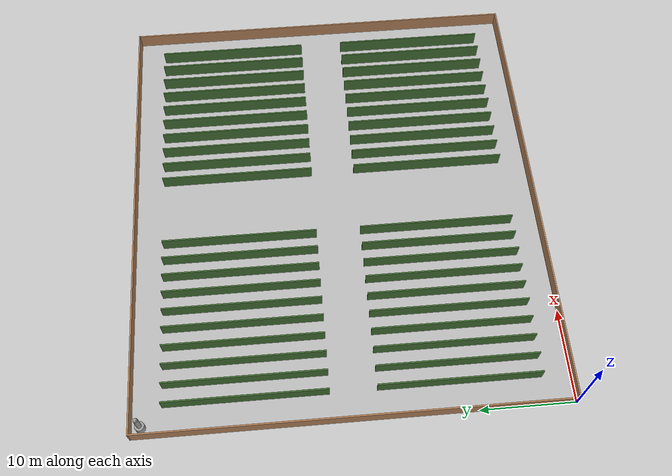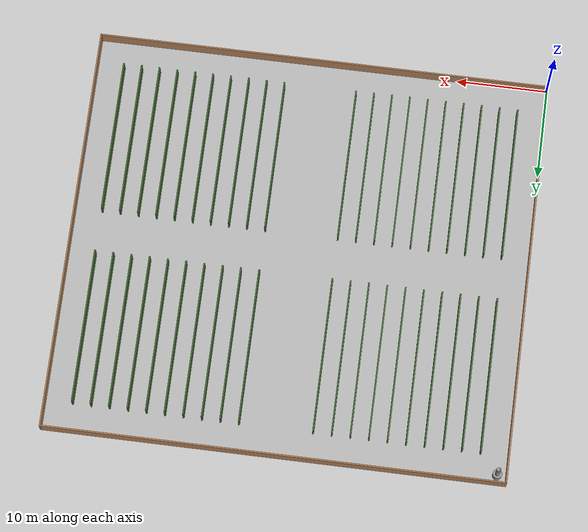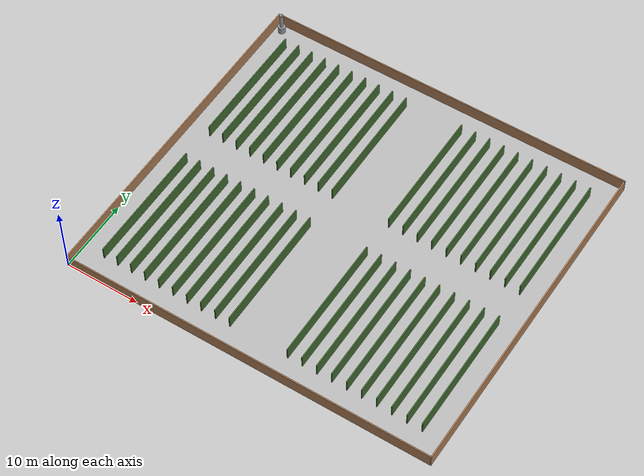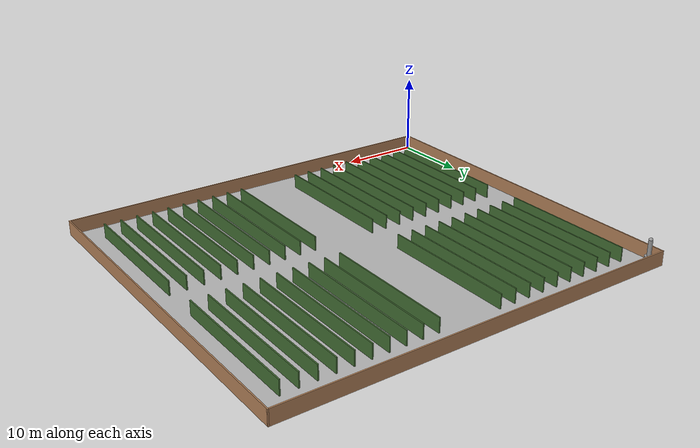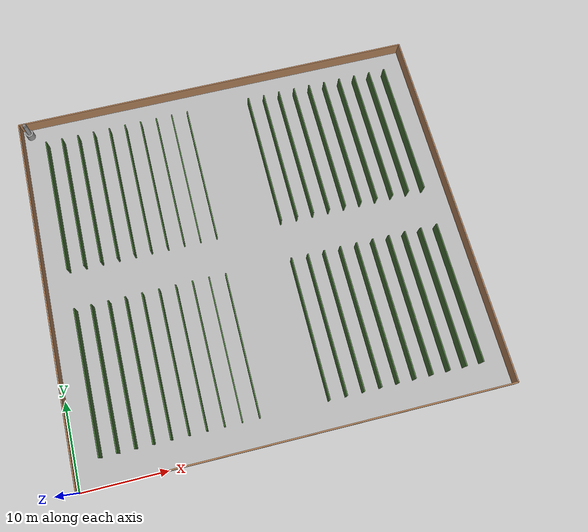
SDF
<sdf version="1.4">
 <world name="default">
  <light name="sun" type="directional">
   <pose>0 0 10 0 -0 0</pose>
   <diffuse>0.8 0.8 0.8 1</diffuse>
   <specular>0.2 0.2 0.2 1</specular>
   <attenuation>
    <range>1000</range>
    <constant>0.9</constant>
    <linear>0.01</linear>
    <quadratic>0.001</quadratic>
   </attenuation>
   <direction>0.5 0.1 -0.9</direction>
  </light>
  <scene><ambient>0.4 0.4 0.4 1</ambient><background>0.7 0.7 0.7 1</background><shadows>0</shadows></scene>
  <include>
   <uri>model://Workspaces/rasoc2_ws/src/rasoc_pkg/models/finca_nueva</uri>
   <pose>25 22.5 0 0 0 0</pose>
  </include>
  <include>
   <uri>model://Workspaces/rasoc2_ws/src/rasoc_pkg/models/gps_base</uri>
   <pose>1 44 1 0 0 0</pose>
  </include>
 </world>
</sdf>

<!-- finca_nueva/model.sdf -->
<sdf version='1.7'>
  <model name='finca_nueva'>
    <pose>0 0 0 0 0 0</pose>

  <!-- Piso -->
    <link name='Floor_0'>
      <collision name='Floor_0_Collision'>
        <geometry>
          <box>
            <size>50 45 0.1</size>
          </box>
        </geometry>
        <pose>0 0 0 0 0 0</pose>
      </collision>
      <visual name='Floor_0_Visual'>
        <pose>0 0 0 0 0 0</pose>
        <geometry>
          <box>
            <size>50 45 0.1</size>
          </box>
        </geometry>
        <material>
           <script>
            <uri>materials/scripts</uri>
            <uri>materials/textures</uri>
            <name>sandAlbedo/Diffuse</name>
          </script>
        </material>
        <meta>
          <layer>0</layer>
        </meta>
      </visual>
      <pose>0 0 0 0 0 0</pose>
    </link>

  <!-- Paredes -->
    <link name='Wall_1'>
      <collision name='Wall_1_Collision'>
        <geometry>
          <box>
            <size>50.15 0.15 1.8</size>
          </box>
        </geometry>
        <pose>0 0 0.9 0 0 0</pose>
      </collision>
      <visual name='Wall_1_Visual'>
        <pose>0 0 0.9 0 -0 0</pose>
        <geometry>
          <box>
            <size>50.15 0.15 1.8</size>
          </box>
        </geometry>
        <material>
           <script>
            <uri>file://media/materials/scripts/gazebo.material</uri>
            <name>Gazebo/Grey</name>
          </script>
          <ambient>0.709804 0.513726 0.352941 1</ambient>
          <diffuse>0.7 0.7 0.7 1</diffuse>
          <specular>0.01 0.01 0.01 1</specular>
          <emissive>0 0 0 1</emissive>
        </material>
        <meta>
          <layer>0</layer>
        </meta>
      </visual>
      <pose>0 -22.5 0 0 0 0</pose>
    </link>

    <link name='Wall_3'>
      <collision name='Wall_3_Collision'>
        <geometry>
          <box>
            <size>45.15 0.15 1.8</size>
          </box>
        </geometry>
        <pose>0 0 0.9 0 -0 0</pose>
      </collision>
      <visual name='Wall_3_Visual'>
        <pose>0 0 0.9 0 -0 0</pose>
        <geometry>
          <box>
            <size>45.15 0.15 1.8</size>
          </box>
        </geometry>
        <material>
          <script>
            <uri>file://media/materials/scripts/gazebo.material</uri>
            <name>Gazebo/Grey</name>
          </script>
          <ambient>0.709804 0.513726 0.352941 1</ambient>
          <diffuse>0.7 0.7 0.7 1</diffuse>
          <specular>0.01 0.01 0.01 1</specular>
          <emissive>0 0 0 1</emissive>
        </material>
        <meta>
          <layer>0</layer>
        </meta>
      </visual>
      <pose>25 0 0 0 -0 1.5708</pose>
    </link>

    <link name='Wall_4'>
      <collision name='Wall_4_Collision'>
        <geometry>
          <box>
            <size>50.15 0.15 1.8</size>
          </box>
        </geometry>
        <pose>0 0 0.9 0 -0 0</pose>
      </collision>
      <visual name='Wall_4_Visual'>
        <pose>0 0 0.9 0 -0 0</pose>
        <geometry>
          <box>
            <size>50.15 0.15 1.8</size>
          </box>
        </geometry>
        <material>
          <script>
            <uri>file://media/materials/scripts/gazebo.material</uri>
            <name>Gazebo/Grey</name>
          </script>
          <ambient>0.709804 0.513726 0.352941 1</ambient>
          <diffuse>0.7 0.7 0.7 1</diffuse>
          <specular>0.01 0.01 0.01 1</specular>
          <emissive>0 0 0 1</emissive>
        </material>
        <meta>
          <layer>0</layer>
        </meta>
      </visual>
      <pose>0 22.5 0 0 -0 3.14159</pose>
    </link>

    <link name='Wall_5'>
      <collision name='Wall_5_Collision'>
        <geometry>
          <box>
            <size>45.15 0.15 1.8</size>
          </box>
        </geometry>
        <pose>0 0 0.9 0 -0 0</pose>
      </collision>
      <visual name='Wall_5_Visual'>
        <pose>0 0 0.9 0 -0 0</pose>
        <geometry>
          <box>
            <size>45.15 0.15 1.8</size>
          </box>
        </geometry>
        <material>
          <script>
            <uri>file://media/materials/scripts/gazebo.material</uri>
            <name>Gazebo/Grey</name>
          </script>
          <ambient>0.709804 0.513726 0.352941 1</ambient>
          <diffuse>0.7 0.7 0.7 1</diffuse>
          <specular>0.01 0.01 0.01 1</specular>
          <emissive>0 0 0 1</emissive>
        </material>
        <meta>
          <layer>0</layer>
        </meta>
      </visual>
      <pose>-25 0 0 0 -0 -1.5708</pose>
    </link>

  <!-- Arriba Izquierda -->
    <link name='Wall_11'>
      <collision name='Wall_11_Collision'>
        <geometry>
          <box>
            <size>17 0.15 1.8</size>
          </box>
        </geometry>
        <pose>0 0 0.9 0 -0 0</pose>
      </collision>
      <visual name='Wall_11_Visual'>
        <pose>0 0 0.9 0 -0 0</pose>
        <geometry>
          <box>
            <size>17 0.15 1.8</size>
          </box>
        </geometry>
        <material>
          <script>
            <uri>file://media/materials/scripts/gazebo.material</uri>
            <name>Gazebo/Grey</name>
          </script>
          <ambient>0.266667 0.435294 0.203922 1</ambient>
        </material>
        <meta>
          <layer>0</layer>
        </meta>
      </visual>
      <pose>-22 10.925 0 0 -0 -1.5708</pose>
    </link>

    <link name='Wall_12'>
      <collision name='Wall_12_Collision'>
        <geometry>
          <box>
            <size>17 0.15 1.8</size>
          </box>
        </geometry>
        <pose>0 0 0.9 0 -0 0</pose>
      </collision>
      <visual name='Wall_12_Visual'>
        <pose>0 0 0.9 0 -0 0</pose>
        <geometry>
          <box>
            <size>17 0.15 1.8</size>
          </box>
        </geometry>
        <material>
          <script>
            <uri>file://media/materials/scripts/gazebo.material</uri>
            <name>Gazebo/Grey</name>
          </script>
          <ambient>0.266667 0.435294 0.203922 1</ambient>
        </material>
        <meta>
          <layer>0</layer>
        </meta>
      </visual>
      <pose>-20 10.925 0 0 -0 -1.5708</pose>
    </link>

    <link name='Wall_13'>
      <collision name='Wall_13_Collision'>
        <geometry>
          <box>
            <size>17 0.15 1.8</size>
          </box>
        </geometry>
        <pose>0 0 0.9 0 0 0</pose>
      </collision>
      <visual name='Wall_13_Visual'>
        <pose>0 0 0.9 0 0 0</pose>
        <geometry>
          <box>
            <size>17 0.15 1.8</size>
          </box>
        </geometry>
        <material>
          <script>
            <uri>file://media/materials/scripts/gazebo.material</uri>
            <name>Gazebo/Grey</name>
          </script>
          <ambient>0.266667 0.435294 0.203922 1</ambient>
        </material>
        <meta>
          <layer>0</layer>
        </meta>
      </visual>
      <pose>-18 10.925 0 0 0 1.5708</pose>
    </link>

    <link name='Wall_14'>
      <collision name='Wall_14_Collision'>
        <geometry>
          <box>
            <size>17 0.15 1.8</size>
          </box>
        </geometry>
        <pose>0 0 0.9 0 0 0</pose>
      </collision>
      <visual name='Wall_14_Visual'>
        <pose>0 0 0.9 0 0 0</pose>
        <geometry>
          <box>
            <size>17 0.15 1.8</size>
          </box>
        </geometry>
        <material>
          <script>
            <uri>file://media/materials/scripts/gazebo.material</uri>
            <name>Gazebo/Grey</name>
          </script>
          <ambient>0.266667 0.435294 0.203922 1</ambient>
        </material>
        <meta>
          <layer>0</layer>
        </meta>
      </visual>
      <pose>-16 10.925 0 0 0 1.5708</pose>
    </link>

    <link name='Wall_15'>
      <collision name='Wall_15_Collision'>
        <geometry>
          <box>
            <size>17 0.15 1.8</size>
          </box>
        </geometry>
        <pose>0 0 0.9 0 0 0</pose>
      </collision>
      <visual name='Wall_15_Visual'>
        <pose>0 0 0.9 0 0 0</pose>
        <geometry>
          <box>
            <size>17 0.15 1.8</size>
          </box>
        </geometry>
        <material>
          <script>
            <uri>file://media/materials/scripts/gazebo.material</uri>
            <name>Gazebo/Grey</name>
          </script>
          <ambient>0.266667 0.435294 0.203922 1</ambient>
        </material>
        <meta>
          <layer>0</layer>
        </meta>
      </visual>
      <pose>-14 10.925 0 0 0 1.5708</pose>
    </link>

    <link name='Wall_16'>
      <collision name='Wall_16_Collision'>
        <geometry>
          <box>
            <size>17 0.15 1.8</size>
          </box>
        </geometry>
        <pose>0 0 0.9 0 0 0</pose>
      </collision>
      <visual name='Wall_16_Visual'>
        <pose>0 0 0.9 0 0 0</pose>
        <geometry>
          <box>
            <size>17 0.15 1.8</size>
          </box>
        </geometry>
        <material>
          <script>
            <uri>file://media/materials/scripts/gazebo.material</uri>
            <name>Gazebo/Grey</name>
          </script>
          <ambient>0.266667 0.435294 0.203922 1</ambient>
        </material>
        <meta>
          <layer>0</layer>
        </meta>
      </visual>
      <pose>-12 10.925 0 0 0 1.5708</pose>
    </link>

    <link name='Wall_17'>
      <collision name='Wall_17_Collision'>
        <geometry>
          <box>
            <size>17 0.15 1.8</size>
          </box>
        </geometry>
        <pose>0 0 0.9 0 0 0</pose>
      </collision>
      <visual name='Wall_17_Visual'>
        <pose>0 0 0.9 0 0 0</pose>
        <geometry>
          <box>
            <size>17 0.15 1.8</size>
          </box>
        </geometry>
        <material>
          <script>
            <uri>file://media/materials/scripts/gazebo.material</uri>
            <name>Gazebo/Grey</name>
          </script>
          <ambient>0.266667 0.435294 0.203922 1</ambient>
        </material>
        <meta>
          <layer>0</layer>
        </meta>
      </visual>
      <pose>-10 10.925 0 0 0 1.5708</pose>
    </link>

    <link name='Wall_18'>
      <collision name='Wall_18_Collision'>
        <geometry>
          <box>
            <size>17 0.15 1.8</size>
          </box>
        </geometry>
        <pose>0 0 0.9 0 0 0</pose>
      </collision>
      <visual name='Wall_18_Visual'>
        <pose>0 0 0.9 0 0 0</pose>
        <geometry>
          <box>
            <size>17 0.15 1.8</size>
          </box>
        </geometry>
        <material>
          <script>
            <uri>file://media/materials/scripts/gazebo.material</uri>
            <name>Gazebo/Grey</name>
          </script>
          <ambient>0.266667 0.435294 0.203922 1</ambient>
        </material>
        <meta>
          <layer>0</layer>
        </meta>
      </visual>
      <pose>-8 10.925 0 0 0 1.5708</pose>
    </link>

    <link name='Wall_19'>
      <collision name='Wall_19_Collision'>
        <geometry>
          <box>
            <size>17 0.15 1.8</size>
          </box>
        </geometry>
        <pose>0 0 0.9 0 0 0</pose>
      </collision>
      <visual name='Wall_19_Visual'>
        <pose>0 0 0.9 0 0 0</pose>
        <geometry>
          <box>
            <size>17 0.15 1.8</size>
          </box>
        </geometry>
        <material>
          <script>
            <uri>file://media/materials/scripts/gazebo.material</uri>
            <name>Gazebo/Grey</name>
          </script>
          <ambient>0.266667 0.435294 0.203922 1</ambient>
        </material>
        <meta>
          <layer>0</layer>
        </meta>
      </visual>
      <pose>-6 10.925 0 0 0 1.5708</pose>
    </link>

    <link name='Wall_20'>
      <collision name='Wall_20_Collision'>
        <geometry>
          <box>
            <size>17 0.15 1.8</size>
          </box>
        </geometry>
        <pose>0 0 0.9 0 0 0</pose>
      </collision>
      <visual name='Wall_20_Visual'>
        <pose>0 0 0.9 0 0 0</pose>
        <geometry>
          <box>
            <size>17 0.15 1.8</size>
          </box>
        </geometry>
        <material>
          <script>
            <uri>file://media/materials/scripts/gazebo.material</uri>
            <name>Gazebo/Grey</name>
          </script>
          <ambient>0.266667 0.435294 0.203922 1</ambient>
        </material>
        <meta>
          <layer>0</layer>
        </meta>
      </visual>
      <pose>-4 10.925 0 0 0 1.5708</pose>
    </link>

  <!-- Arriba Derecha -->
    <link name='Wall_21'>
      <collision name='Wall_21_Collision'>
        <geometry>
          <box>
            <size>17 0.15 1.8</size>
          </box>
        </geometry>
        <pose>0 0 0.9 0 -0 0</pose>
      </collision>
      <visual name='Wall_21_Visual'>
        <pose>0 0 0.9 0 -0 0</pose>
        <geometry>
          <box>
            <size>17 0.15 1.8</size>
          </box>
        </geometry>
        <material>
          <script>
            <uri>file://media/materials/scripts/gazebo.material</uri>
            <name>Gazebo/Grey</name>
          </script>
          <ambient>0.266667 0.435294 0.203922 1</ambient>
        </material>
        <meta>
          <layer>0</layer>
        </meta>
      </visual>
      <pose>4 10.925 0 0 -0 1.5708</pose>
    </link>

    <link name='Wall_22'>
      <collision name='Wall_22_Collision'>
        <geometry>
          <box>
            <size>17 0.15 1.8</size>
          </box>
        </geometry>
        <pose>0 0 0.9 0 -0 0</pose>
      </collision>
      <visual name='Wall_22_Visual'>
        <pose>0 0 0.9 0 -0 0</pose>
        <geometry>
          <box>
            <size>17 0.15 1.8</size>
          </box>
        </geometry>
        <material>
          <script>
            <uri>file://media/materials/scripts/gazebo.material</uri>
            <name>Gazebo/Grey</name>
          </script>
          <ambient>0.266667 0.435294 0.203922 1</ambient>
        </material>
        <meta>
          <layer>0</layer>
        </meta>
      </visual>
      <pose>6 10.925 0 0 -0 1.5708</pose>
    </link>

    <link name='Wall_23'>
      <collision name='Wall_23_Collision'>
        <geometry>
          <box>
            <size>17 0.15 1.8</size>
          </box>
        </geometry>
        <pose>0 0 0.9 0 -0 0</pose>
      </collision>
      <visual name='Wall_23_Visual'>
        <pose>0 0 0.9 0 -0 0</pose>
        <geometry>
          <box>
            <size>17 0.15 1.8</size>
          </box>
        </geometry>
        <material>
          <script>
            <uri>file://media/materials/scripts/gazebo.material</uri>
            <name>Gazebo/Grey</name>
          </script>
          <ambient>0.266667 0.435294 0.203922 1</ambient>
        </material>
        <meta>
          <layer>0</layer>
        </meta>
      </visual>
      <pose>8 10.925 0 0 -0 1.5708</pose>
    </link>

    <link name='Wall_24'>
      <collision name='Wall_24_Collision'>
        <geometry>
          <box>
            <size>17 0.15 1.8</size>
          </box>
        </geometry>
        <pose>0 0 0.9 0 -0 0</pose>
      </collision>
      <visual name='Wall_24_Visual'>
        <pose>0 0 0.9 0 -0 0</pose>
        <geometry>
          <box>
            <size>17 0.15 1.8</size>
          </box>
        </geometry>
        <material>
          <script>
            <uri>file://media/materials/scripts/gazebo.material</uri>
            <name>Gazebo/Grey</name>
          </script>
          <ambient>0.266667 0.435294 0.203922 1</ambient>
        </material>
        <meta>
          <layer>0</layer>
        </meta>
      </visual>
      <pose>10 10.925 0 0 -0 1.5708</pose>
    </link>

    <link name='Wall_25'>
      <collision name='Wall_25_Collision'>
        <geometry>
          <box>
            <size>17 0.15 1.8</size>
          </box>
        </geometry>
        <pose>0 0 0.9 0 -0 0</pose>
      </collision>
      <visual name='Wall_25_Visual'>
        <pose>0 0 0.9 0 -0 0</pose>
        <geometry>
          <box>
            <size>17 0.15 1.8</size>
          </box>
        </geometry>
        <material>
          <script>
            <uri>file://media/materials/scripts/gazebo.material</uri>
            <name>Gazebo/Grey</name>
          </script>
          <ambient>0.266667 0.435294 0.203922 1</ambient>
        </material>
        <meta>
          <layer>0</layer>
        </meta>
      </visual>
      <pose>12 10.925 0 0 -0 1.5708</pose>
    </link>

    <link name='Wall_26'>
      <collision name='Wall_26_Collision'>
        <geometry>
          <box>
            <size>17 0.15 1.8</size>
          </box>
        </geometry>
        <pose>0 0 0.9 0 -0 0</pose>
      </collision>
      <visual name='Wall_26_Visual'>
        <pose>0 0 0.9 0 -0 0</pose>
        <geometry>
          <box>
            <size>17 0.15 1.8</size>
          </box>
        </geometry>
        <material>
          <script>
            <uri>file://media/materials/scripts/gazebo.material</uri>
            <name>Gazebo/Grey</name>
          </script>
          <ambient>0.266667 0.435294 0.203922 1</ambient>
        </material>
        <meta>
          <layer>0</layer>
        </meta>
      </visual>
      <pose>14 10.925 0 0 -0 1.5708</pose>
    </link>

    <link name='Wall_27'>
      <collision name='Wall_27_Collision'>
        <geometry>
          <box>
            <size>17 0.15 1.8</size>
          </box>
        </geometry>
        <pose>0 0 0.9 0 -0 0</pose>
      </collision>
      <visual name='Wall_27_Visual'>
        <pose>0 0 0.9 0 -0 0</pose>
        <geometry>
          <box>
            <size>17 0.15 1.8</size>
          </box>
        </geometry>
        <material>
          <script>
            <uri>file://media/materials/scripts/gazebo.material</uri>
            <name>Gazebo/Grey</name>
          </script>
          <ambient>0.266667 0.435294 0.203922 1</ambient>
        </material>
        <meta>
          <layer>0</layer>
        </meta>
      </visual>
      <pose>16 10.925 0 0 -0 1.5708</pose>
    </link>

    <link name='Wall_28'>
      <collision name='Wall_28_Collision'>
        <geometry>
          <box>
            <size>17 0.15 1.8</size>
          </box>
        </geometry>
        <pose>0 0 0.9 0 -0 0</pose>
      </collision>
      <visual name='Wall_28_Visual'>
        <pose>0 0 0.9 0 -0 0</pose>
        <geometry>
          <box>
            <size>17 0.15 1.8</size>
          </box>
        </geometry>
        <material>
          <script>
            <uri>file://media/materials/scripts/gazebo.material</uri>
            <name>Gazebo/Grey</name>
          </script>
          <ambient>0.266667 0.435294 0.203922 1</ambient>
        </material>
        <meta>
          <layer>0</layer>
        </meta>
      </visual>
      <pose>18 10.925 0 0 -0 1.5708</pose>
    </link>

    <link name='Wall_29'>
      <collision name='Wall_29_Collision'>
        <geometry>
          <box>
            <size>17 0.15 1.8</size>
          </box>
        </geometry>
        <pose>0 0 0.9 0 -0 0</pose>
      </collision>
      <visual name='Wall_29_Visual'>
        <pose>0 0 0.9 0 -0 0</pose>
        <geometry>
          <box>
            <size>17 0.15 1.8</size>
          </box>
        </geometry>
        <material>
          <script>
            <uri>file://media/materials/scripts/gazebo.material</uri>
            <name>Gazebo/Grey</name>
          </script>
          <ambient>0.266667 0.435294 0.203922 1</ambient>
        </material>
        <meta>
          <layer>0</layer>
        </meta>
      </visual>
      <pose>20 10.925 0 0 -0 1.5708</pose>
    </link>

    <link name='Wall_30'>
      <collision name='Wall_30_Collision'>
        <geometry>
          <box>
            <size>17 0.15 1.8</size>
          </box>
        </geometry>
        <pose>0 0 0.9 0 -0 0</pose>
      </collision>
      <visual name='Wall_30_Visual'>
        <pose>0 0 0.9 0 -0 0</pose>
        <geometry>
          <box>
            <size>17 0.15 1.8</size>
          </box>
        </geometry>
        <material>
          <script>
            <uri>file://media/materials/scripts/gazebo.material</uri>
            <name>Gazebo/Grey</name>
          </script>
          <ambient>0.266667 0.435294 0.203922 1</ambient>
        </material>
        <meta>
          <layer>0</layer>
        </meta>
      </visual>
      <pose>22 10.925 0 0 -0 1.5708</pose>
    </link>

  <!-- Abajo Derecha -->
    <link name='Wall_31'>
      <collision name='Wall_31_Collision'>
        <geometry>
          <box>
            <size>17 0.15 1.8</size>
          </box>
        </geometry>
        <pose>0 0 0.9 0 -0 0</pose>
      </collision>
      <visual name='Wall_31_Visual'>
        <pose>0 0 0.9 0 -0 0</pose>
        <geometry>
          <box>
            <size>17 0.15 1.8</size>
          </box>
        </geometry>
        <material>
          <script>
            <uri>file://media/materials/scripts/gazebo.material</uri>
            <name>Gazebo/Grey</name>
          </script>
          <ambient>0.266667 0.435294 0.203922 1</ambient>
        </material>
        <meta>
          <layer>0</layer>
        </meta>
      </visual>
      <pose>4 -10.925 0 0 -0 1.5708</pose>
    </link>

    <link name='Wall_32'>
      <collision name='Wall_32_Collision'>
        <geometry>
          <box>
            <size>17 0.15 1.8</size>
          </box>
        </geometry>
        <pose>0 0 0.9 0 -0 0</pose>
      </collision>
      <visual name='Wall_32_Visual'>
        <pose>0 0 0.9 0 -0 0</pose>
        <geometry>
          <box>
            <size>17 0.15 1.8</size>
          </box>
        </geometry>
        <material>
          <script>
            <uri>file://media/materials/scripts/gazebo.material</uri>
            <name>Gazebo/Grey</name>
          </script>
          <ambient>0.266667 0.435294 0.203922 1</ambient>
        </material>
        <meta>
          <layer>0</layer>
        </meta>
      </visual>
      <pose>6 -10.925 0 0 -0 1.5708</pose>
    </link>

    <link name='Wall_33'>
      <collision name='Wall_33_Collision'>
        <geometry>
          <box>
            <size>17 0.15 1.8</size>
          </box>
        </geometry>
        <pose>0 0 0.9 0 -0 0</pose>
      </collision>
      <visual name='Wall_33_Visual'>
        <pose>0 0 0.9 0 -0 0</pose>
        <geometry>
          <box>
            <size>17 0.15 1.8</size>
          </box>
        </geometry>
        <material>
          <script>
            <uri>file://media/materials/scripts/gazebo.material</uri>
            <name>Gazebo/Grey</name>
          </script>
          <ambient>0.266667 0.435294 0.203922 1</ambient>
        </material>
        <meta>
          <layer>0</layer>
        </meta>
      </visual>
      <pose>8 -10.925 0 0 -0 1.5708</pose>
    </link>

    <link name='Wall_34'>
      <collision name='Wall_34_Collision'>
        <geometry>
          <box>
            <size>17 0.15 1.8</size>
          </box>
        </geometry>
        <pose>0 0 0.9 0 -0 0</pose>
      </collision>
      <visual name='Wall_34_Visual'>
        <pose>0 0 0.9 0 -0 0</pose>
        <geometry>
          <box>
            <size>17 0.15 1.8</size>
          </box>
        </geometry>
        <material>
          <script>
            <uri>file://media/materials/scripts/gazebo.material</uri>
            <name>Gazebo/Grey</name>
          </script>
          <ambient>0.266667 0.435294 0.203922 1</ambient>
        </material>
        <meta>
          <layer>0</layer>
        </meta>
      </visual>
      <pose>10 -10.925 0 0 -0 1.5708</pose>
    </link>

    <link name='Wall_35'>
      <collision name='Wall_35_Collision'>
        <geometry>
          <box>
            <size>17 0.15 1.8</size>
          </box>
        </geometry>
        <pose>0 0 0.9 0 -0 0</pose>
      </collision>
      <visual name='Wall_35_Visual'>
        <pose>0 0 0.9 0 -0 0</pose>
        <geometry>
          <box>
            <size>17 0.15 1.8</size>
          </box>
        </geometry>
        <material>
          <script>
            <uri>file://media/materials/scripts/gazebo.material</uri>
            <name>Gazebo/Grey</name>
          </script>
          <ambient>0.266667 0.435294 0.203922 1</ambient>
        </material>
        <meta>
          <layer>0</layer>
        </meta>
      </visual>
      <pose>12 -10.925 0 0 -0 1.5708</pose>
    </link>

    <link name='Wall_36'>
      <collision name='Wall_36_Collision'>
        <geometry>
          <box>
            <size>17 0.15 1.8</size>
          </box>
        </geometry>
        <pose>0 0 0.9 0 -0 0</pose>
      </collision>
      <visual name='Wall_36_Visual'>
        <pose>0 0 0.9 0 -0 0</pose>
        <geometry>
          <box>
            <size>17 0.15 1.8</size>
          </box>
        </geometry>
        <material>
          <script>
            <uri>file://media/materials/scripts/gazebo.material</uri>
            <name>Gazebo/Grey</name>
          </script>
          <ambient>0.266667 0.435294 0.203922 1</ambient>
        </material>
        <meta>
          <layer>0</layer>
        </meta>
      </visual>
      <pose>14 -10.925 0 0 -0 1.5708</pose>
    </link>

    <link name='Wall_37'>
      <collision name='Wall_37_Collision'>
        <geometry>
          <box>
            <size>17 0.15 1.8</size>
          </box>
        </geometry>
        <pose>0 0 0.9 0 -0 0</pose>
      </collision>
      <visual name='Wall_37_Visual'>
        <pose>0 0 0.9 0 -0 0</pose>
        <geometry>
          <box>
            <size>17 0.15 1.8</size>
          </box>
        </geometry>
        <material>
          <script>
            <uri>file://media/materials/scripts/gazebo.material</uri>
            <name>Gazebo/Grey</name>
          </script>
          <ambient>0.266667 0.435294 0.203922 1</ambient>
        </material>
        <meta>
          <layer>0</layer>
        </meta>
      </visual>
      <pose>16 -10.925 0 0 -0 1.5708</pose>
    </link>

    <link name='Wall_38'>
      <collision name='Wall_38_Collision'>
        <geometry>
          <box>
            <size>17 0.15 1.8</size>
          </box>
        </geometry>
        <pose>0 0 0.9 0 -0 0</pose>
      </collision>
      <visual name='Wall_38_Visual'>
        <pose>0 0 0.9 0 -0 0</pose>
        <geometry>
          <box>
            <size>17 0.15 1.8</size>
          </box>
        </geometry>
        <material>
          <script>
            <uri>file://media/materials/scripts/gazebo.material</uri>
            <name>Gazebo/Grey</name>
          </script>
          <ambient>0.266667 0.435294 0.203922 1</ambient>
        </material>
        <meta>
          <layer>0</layer>
        </meta>
      </visual>
      <pose>18 -10.925 0 0 -0 1.5708</pose>
    </link>

    <link name='Wall_39'>
      <collision name='Wall_39_Collision'>
        <geometry>
          <box>
            <size>17 0.15 1.8</size>
          </box>
        </geometry>
        <pose>0 0 0.9 0 -0 0</pose>
      </collision>
      <visual name='Wall_39_Visual'>
        <pose>0 0 0.9 0 -0 0</pose>
        <geometry>
          <box>
            <size>17 0.15 1.8</size>
          </box>
        </geometry>
        <material>
          <script>
            <uri>file://media/materials/scripts/gazebo.material</uri>
            <name>Gazebo/Grey</name>
          </script>
          <ambient>0.266667 0.435294 0.203922 1</ambient>
        </material>
        <meta>
          <layer>0</layer>
        </meta>
      </visual>
      <pose>20 -10.925 0 0 -0 1.5708</pose>
    </link>

    <link name='Wall_40'>
      <collision name='Wall_40_Collision'>
        <geometry>
          <box>
            <size>17 0.15 1.8</size>
          </box>
        </geometry>
        <pose>0 0 0.9 0 -0 0</pose>
      </collision>
      <visual name='Wall_40_Visual'>
        <pose>0 0 0.9 0 -0 0</pose>
        <geometry>
          <box>
            <size>17 0.15 1.8</size>
          </box>
        </geometry>
        <material>
          <script>
            <uri>file://media/materials/scripts/gazebo.material</uri>
            <name>Gazebo/Grey</name>
          </script>
          <ambient>0.266667 0.435294 0.203922 1</ambient>
        </material>
        <meta>
          <layer>0</layer>
        </meta>
      </visual>
      <pose>22 -10.925 0 0 -0 1.5708</pose>
    </link>

  <!-- Abajo Izquierda -->
    <link name='Wall_41'>
      <collision name='Wall_41_Collision'>
        <geometry>
          <box>
            <size>17 0.15 1.8</size>
          </box>
        </geometry>
        <pose>0 0 0.9 0 -0 0</pose>
      </collision>
      <visual name='Wall_41_Visual'>
        <pose>0 0 0.9 0 -0 0</pose>
        <geometry>
          <box>
            <size>17 0.15 1.8</size>
          </box>
        </geometry>
        <material>
          <script>
            <uri>file://media/materials/scripts/gazebo.material</uri>
            <name>Gazebo/Grey</name>
          </script>
          <ambient>0.266667 0.435294 0.203922 1</ambient>
        </material>
        <meta>
          <layer>0</layer>
        </meta>
      </visual>
      <pose>-22 -10.925 0 0 -0 -1.5708</pose>
    </link>

    <link name='Wall_42'>
      <collision name='Wall_42_Collision'>
        <geometry>
          <box>
            <size>17 0.15 1.8</size>
          </box>
        </geometry>
        <pose>0 0 0.9 0 -0 0</pose>
      </collision>
      <visual name='Wall_42_Visual'>
        <pose>0 0 0.9 0 -0 0</pose>
        <geometry>
          <box>
            <size>17 0.15 1.8</size>
          </box>
        </geometry>
        <material>
          <script>
            <uri>file://media/materials/scripts/gazebo.material</uri>
            <name>Gazebo/Grey</name>
          </script>
          <ambient>0.266667 0.435294 0.203922 1</ambient>
        </material>
        <meta>
          <layer>0</layer>
        </meta>
      </visual>
      <pose>-20 -10.925 0 0 -0 -1.5708</pose>
    </link>

    <link name='Wall_43'>
      <collision name='Wall_43_Collision'>
        <geometry>
          <box>
            <size>17 0.15 1.8</size>
          </box>
        </geometry>
        <pose>0 0 0.9 0 0 0</pose>
      </collision>
      <visual name='Wall_43_Visual'>
        <pose>0 0 0.9 0 0 0</pose>
        <geometry>
          <box>
            <size>17 0.15 1.8</size>
          </box>
        </geometry>
        <material>
          <script>
            <uri>file://media/materials/scripts/gazebo.material</uri>
            <name>Gazebo/Grey</name>
          </script>
          <ambient>0.266667 0.435294 0.203922 1</ambient>
        </material>
        <meta>
          <layer>0</layer>
        </meta>
      </visual>
      <pose>-18 -10.925 0 0 0 1.5708</pose>
    </link>

    <link name='Wall_44'>
      <collision name='Wall_44_Collision'>
        <geometry>
          <box>
            <size>17 0.15 1.8</size>
          </box>
        </geometry>
        <pose>0 0 0.9 0 0 0</pose>
      </collision>
      <visual name='Wall_44_Visual'>
        <pose>0 0 0.9 0 0 0</pose>
        <geometry>
          <box>
            <size>17 0.15 1.8</size>
          </box>
        </geometry>
        <material>
          <script>
            <uri>file://media/materials/scripts/gazebo.material</uri>
            <name>Gazebo/Grey</name>
          </script>
          <ambient>0.266667 0.435294 0.203922 1</ambient>
        </material>
        <meta>
          <layer>0</layer>
        </meta>
      </visual>
      <pose>-16 -10.925 0 0 0 1.5708</pose>
    </link>

    <link name='Wall_45'>
      <collision name='Wall_45_Collision'>
        <geometry>
          <box>
            <size>17 0.15 1.8</size>
          </box>
        </geometry>
        <pose>0 0 0.9 0 0 0</pose>
      </collision>
      <visual name='Wall_45_Visual'>
        <pose>0 0 0.9 0 0 0</pose>
        <geometry>
          <box>
            <size>17 0.15 1.8</size>
          </box>
        </geometry>
        <material>
          <script>
            <uri>file://media/materials/scripts/gazebo.material</uri>
            <name>Gazebo/Grey</name>
          </script>
          <ambient>0.266667 0.435294 0.203922 1</ambient>
        </material>
        <meta>
          <layer>0</layer>
        </meta>
      </visual>
      <pose>-14 -10.925 0 0 0 1.5708</pose>
    </link>

    <link name='Wall_46'>
      <collision name='Wall_46_Collision'>
        <geometry>
          <box>
            <size>17 0.15 1.8</size>
          </box>
        </geometry>
        <pose>0 0 0.9 0 0 0</pose>
      </collision>
      <visual name='Wall_46_Visual'>
        <pose>0 0 0.9 0 0 0</pose>
        <geometry>
          <box>
            <size>17 0.15 1.8</size>
          </box>
        </geometry>
        <material>
          <script>
            <uri>file://media/materials/scripts/gazebo.material</uri>
            <name>Gazebo/Grey</name>
          </script>
          <ambient>0.266667 0.435294 0.203922 1</ambient>
        </material>
        <meta>
          <layer>0</layer>
        </meta>
      </visual>
      <pose>-12 -10.925 0 0 0 1.5708</pose>
    </link>

    <link name='Wall_47'>
      <collision name='Wall_47_Collision'>
        <geometry>
          <box>
            <size>17 0.15 1.8</size>
          </box>
        </geometry>
        <pose>0 0 0.9 0 0 0</pose>
      </collision>
      <visual name='Wall_47_Visual'>
        <pose>0 0 0.9 0 0 0</pose>
        <geometry>
          <box>
            <size>17 0.15 1.8</size>
          </box>
        </geometry>
        <material>
          <script>
            <uri>file://media/materials/scripts/gazebo.material</uri>
            <name>Gazebo/Grey</name>
          </script>
          <ambient>0.266667 0.435294 0.203922 1</ambient>
        </material>
        <meta>
          <layer>0</layer>
        </meta>
      </visual>
      <pose>-10 -10.925 0 0 0 1.5708</pose>
    </link>

    <link name='Wall_48'>
      <collision name='Wall_48_Collision'>
        <geometry>
          <box>
            <size>17 0.15 1.8</size>
          </box>
        </geometry>
        <pose>0 0 0.9 0 0 0</pose>
      </collision>
      <visual name='Wall_48_Visual'>
        <pose>0 0 0.9 0 0 0</pose>
        <geometry>
          <box>
            <size>17 0.15 1.8</size>
          </box>
        </geometry>
        <material>
          <script>
            <uri>file://media/materials/scripts/gazebo.material</uri>
            <name>Gazebo/Grey</name>
          </script>
          <ambient>0.266667 0.435294 0.203922 1</ambient>
        </material>
        <meta>
          <layer>0</layer>
        </meta>
      </visual>
      <pose>-8 -10.925 0 0 0 1.5708</pose>
    </link>

    <link name='Wall_49'>
      <collision name='Wall_49_Collision'>
        <geometry>
          <box>
            <size>17 0.15 1.8</size>
          </box>
        </geometry>
        <pose>0 0 0.9 0 0 0</pose>
      </collision>
      <visual name='Wall_49_Visual'>
        <pose>0 0 0.9 0 0 0</pose>
        <geometry>
          <box>
            <size>17 0.15 1.8</size>
          </box>
        </geometry>
        <material>
          <script>
            <uri>file://media/materials/scripts/gazebo.material</uri>
            <name>Gazebo/Grey</name>
          </script>
          <ambient>0.266667 0.435294 0.203922 1</ambient>
        </material>
        <meta>
          <layer>0</layer>
        </meta>
      </visual>
      <pose>-6 -10.925 0 0 0 1.5708</pose>
    </link>

    <link name='Wall_50'>
      <collision name='Wall_50_Collision'>
        <geometry>
          <box>
            <size>17 0.15 1.8</size>
          </box>
        </geometry>
        <pose>0 0 0.9 0 0 0</pose>
      </collision>
      <visual name='Wall_50_Visual'>
        <pose>0 0 0.9 0 0 0</pose>
        <geometry>
          <box>
            <size>17 0.15 1.8</size>
          </box>
        </geometry>
        <material>
          <script>
            <uri>file://media/materials/scripts/gazebo.material</uri>
            <name>Gazebo/Grey</name>
          </script>
          <ambient>0.266667 0.435294 0.203922 1</ambient>
        </material>
        <meta>
          <layer>0</layer>
        </meta>
      </visual>
      <pose>-4 -10.925 0 0 0 1.5708</pose>
    </link>

    <static>1</static>
  </model>
</sdf>

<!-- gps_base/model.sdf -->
<sdf version='1.7'>
  <model name='gps_base'>
  <gravity>true</gravity>
  <static>false</static>
    <link name='link'>
      <inertial>
        <mass>0.5</mass>
        <inertia>
          <ixx>0.0316667</ixx>
          <ixy>0</ixy>
          <ixz>0</ixz>
          <iyy>0.0316667</iyy>
          <iyz>0</iyz>
          <izz>0.0625</izz>
        </inertia>
        <pose>0 0 0 0 0 0</pose>
      </inertial>
      <self_collide>0</self_collide>
      <enable_wind>0</enable_wind>
      <kinematic>0</kinematic>
      <pose>0 0 0 0 0 0</pose>
      <gravity>1</gravity>
      <visual name='visual'>
        <geometry>
          <cylinder>
            <radius>0.5</radius>
            <length>1</length>
          </cylinder>
        </geometry>
        <material>
          <script>
            <name>Gazebo/Grey</name>
            <uri>file://media/materials/scripts/gazebo.material</uri>
          </script>
          <shader type='pixel'>
            <normal_map>__default__</normal_map>
          </shader>
          <ambient>0.3 0.3 0.3 1</ambient>
          <diffuse>0.7 0.7 0.7 1</diffuse>
          <specular>0.01 0.01 0.01 1</specular>
          <emissive>0 0 0 1</emissive>
        </material>
        <pose>0 0 -0.45 0 -0 0</pose>
        <transparency>0</transparency>
        <cast_shadows>1</cast_shadows>
      </visual>
      <collision name='collision'>
        <laser_retro>0</laser_retro>
        <max_contacts>10</max_contacts>
        <pose>0 0 -0.45 0 -0 0</pose>
        <geometry>
          <cylinder>
            <radius>0.5</radius>
            <length>1</length>
          </cylinder>
        </geometry>
        <surface>
          <friction>
            <ode>
              <mu>1</mu>
              <mu2>1</mu2>
              <fdir1>0 0 0</fdir1>
              <slip1>0</slip1>
              <slip2>0</slip2>
            </ode>
            <torsional>
              <coefficient>1</coefficient>
              <patch_radius>0</patch_radius>
              <surface_radius>0</surface_radius>
              <use_patch_radius>1</use_patch_radius>
              <ode>
                <slip>0</slip>
              </ode>
            </torsional>
          </friction>
          <bounce>
            <restitution_coefficient>0</restitution_coefficient>
            <threshold>1e+06</threshold>
          </bounce>
          <contact>
            <collide_without_contact>0</collide_without_contact>
            <collide_without_contact_bitmask>1</collide_without_contact_bitmask>
            <collide_bitmask>1</collide_bitmask>
            <ode>
              <soft_cfm>0</soft_cfm>
              <soft_erp>0.2</soft_erp>
              <kp>1e+13</kp>
              <kd>1</kd>
              <max_vel>0.01</max_vel>
              <min_depth>0</min_depth>
            </ode>
            <bullet>
              <split_impulse>1</split_impulse>
              <split_impulse_penetration_threshold>-0.01</split_impulse_penetration_threshold>
              <soft_cfm>0</soft_cfm>
              <soft_erp>0.2</soft_erp>
              <kp>1e+13</kp>
              <kd>1</kd>
            </bullet>
          </contact>
        </surface>
      </collision>
    </link>
    <link name='link_0'>
      <inertial>
        <mass>1</mass>
        <inertia>
          <ixx>0.145833</ixx>
          <ixy>0</ixy>
          <ixz>0</ixz>
          <iyy>0.145833</iyy>
          <iyz>0</iyz>
          <izz>0.125</izz>
        </inertia>
        <pose>0 0 0 0 0 0</pose>
      </inertial>
      <pose>0 0 0 0 0 0</pose>
      <gravity>1</gravity>
      <self_collide>0</self_collide>
      <kinematic>0</kinematic>
      <enable_wind>0</enable_wind>
      <visual name='visual'>
        <pose>0 0 1 0 -0 0</pose>
        <geometry>
          <cylinder>
            <radius>0.25</radius>
            <length>2</length>
          </cylinder>
        </geometry>
        <material>
          <lighting>1</lighting>
          <script>
            <uri>file://media/materials/scripts/gazebo.material</uri>
            <name>Gazebo/Grey</name>
          </script>
          <shader type='pixel'>
            <normal_map>__default__</normal_map>
          </shader>
          <ambient>0.3 0.3 0.3 1</ambient>
          <diffuse>0.7 0.7 0.7 1</diffuse>
          <specular>0.01 0.01 0.01 1</specular>
          <emissive>0 0 0 1</emissive>
        </material>
        <transparency>0</transparency>
        <cast_shadows>1</cast_shadows>
      </visual>
      <collision name='collision'>
        <laser_retro>0</laser_retro>
        <max_contacts>10</max_contacts>
        <pose>0 0 1 0 0 0</pose>
        <geometry>
          <cylinder>
            <radius>0.25</radius>
            <length>2</length>
          </cylinder>
        </geometry>
        <surface>
          <friction>
            <ode>
              <mu>1</mu>
              <mu2>1</mu2>
              <fdir1>0 0 0</fdir1>
              <slip1>0</slip1>
              <slip2>0</slip2>
            </ode>
            <torsional>
              <coefficient>1</coefficient>
              <patch_radius>0</patch_radius>
              <surface_radius>0</surface_radius>
              <use_patch_radius>1</use_patch_radius>
              <ode>
                <slip>0</slip>
              </ode>
            </torsional>
          </friction>
          <bounce>
            <restitution_coefficient>0</restitution_coefficient>
            <threshold>1e+06</threshold>
          </bounce>
          <contact>
            <collide_without_contact>0</collide_without_contact>
            <collide_without_contact_bitmask>1</collide_without_contact_bitmask>
            <collide_bitmask>1</collide_bitmask>
            <ode>
              <soft_cfm>0</soft_cfm>
              <soft_erp>0.2</soft_erp>
              <kp>1e+13</kp>
              <kd>1</kd>
              <max_vel>0.01</max_vel>
              <min_depth>0</min_depth>
            </ode>
            <bullet>
              <split_impulse>1</split_impulse>
              <split_impulse_penetration_threshold>-0.01</split_impulse_penetration_threshold>
              <soft_cfm>0</soft_cfm>
              <soft_erp>0.2</soft_erp>
              <kp>1e+13</kp>
              <kd>1</kd>
            </bullet>
          </contact>
        </surface>
      </collision>

      <!-- GPS Sensor -->
      <sensor name="my_base_gps" type="gps">
          <always_on>true</always_on>
          <update_rate>20</update_rate>
          <gps>
            <position_sensing>
              <horizontal>
                <noise type="gaussian">
                  <mean>0.0</mean>
                  <stddev>2e-4</stddev>
                </noise>
              </horizontal>
              <vertical>
                <noise type="gaussian">
                  <mean>0.0</mean>
                  <stddev>2e-4</stddev>
                </noise>
              </vertical>
            </position_sensing>
          </gps>
          <plugin name="base_gps" filename="libgazebo_ros_gps_sensor.so">
            <ros>
              <namespace>/gps_base</namespace>
              <remapping>~/out:=pos</remapping>
            </ros>
          </plugin>
        </sensor>

    </link>
    <link name='link_0_0'>
      <inertial>
        <mass>1</mass>
        <inertia>
          <ixx>0.1</ixx>
          <ixy>0</ixy>
          <ixz>0</ixz>
          <iyy>0.1</iyy>
          <iyz>0</iyz>
          <izz>0.1</izz>
        </inertia>
        <pose>0 0 0 0 -0 0</pose>
      </inertial>
      <pose>0 0 2 -1e-06 -0 -0.002459</pose>
      <gravity>1</gravity>
      <self_collide>0</self_collide>
      <kinematic>0</kinematic>
      <enable_wind>0</enable_wind>
      <visual name='visual'>
        <pose>0 0 0 0 -0 0</pose>
        <geometry>
          <sphere>
            <radius>0.25</radius>
          </sphere>
        </geometry>
        <material>
          <lighting>1</lighting>
          <script>
            <uri>file://media/materials/scripts/gazebo.material</uri>
            <name>Gazebo/Grey</name>
          </script>
          <shader type='pixel'>
            <normal_map>__default__</normal_map>
          </shader>
          <ambient>0.3 0.3 0.3 1</ambient>
          <diffuse>0.7 0.7 0.7 1</diffuse>
          <specular>0.01 0.01 0.01 1</specular>
          <emissive>0 0 0 1</emissive>
        </material>
        <transparency>0</transparency>
        <cast_shadows>1</cast_shadows>
      </visual>
      <collision name='collision'>
        <laser_retro>0</laser_retro>
        <max_contacts>10</max_contacts>
        <pose>0 0 0 0 -0 0</pose>
        <geometry>
          <sphere>
            <radius>0.25</radius>
          </sphere>
        </geometry>
        <surface>
          <friction>
            <ode>
              <mu>1</mu>
              <mu2>1</mu2>
              <fdir1>0 0 0</fdir1>
              <slip1>0</slip1>
              <slip2>0</slip2>
            </ode>
            <torsional>
              <coefficient>1</coefficient>
              <patch_radius>0</patch_radius>
              <surface_radius>0</surface_radius>
              <use_patch_radius>1</use_patch_radius>
              <ode>
                <slip>0</slip>
              </ode>
            </torsional>
          </friction>
          <bounce>
            <restitution_coefficient>0</restitution_coefficient>
            <threshold>1e+06</threshold>
          </bounce>
          <contact>
            <collide_without_contact>0</collide_without_contact>
            <collide_without_contact_bitmask>1</collide_without_contact_bitmask>
            <collide_bitmask>1</collide_bitmask>
            <ode>
              <soft_cfm>0</soft_cfm>
              <soft_erp>0.2</soft_erp>
              <kp>1e+13</kp>
              <kd>1</kd>
              <max_vel>0.01</max_vel>
              <min_depth>0</min_depth>
            </ode>
            <bullet>
              <split_impulse>1</split_impulse>
              <split_impulse_penetration_threshold>-0.01</split_impulse_penetration_threshold>
              <soft_cfm>0</soft_cfm>
              <soft_erp>0.2</soft_erp>
              <kp>1e+13</kp>
              <kd>1</kd>
            </bullet>
          </contact>
        </surface>
      </collision>
    </link>
    <joint name='link_0_JOINT_0' type='fixed'>
      <parent>link_0</parent>
      <child>link_0_0</child>
      <pose>0 0 0 0 -0 0</pose>
      <physics>
        <ode>
          <limit>
            <cfm>0</cfm>
            <erp>0.2</erp>
          </limit>
          <suspension>
            <cfm>0</cfm>
            <erp>0.2</erp>
          </suspension>
        </ode>
      </physics>
    </joint>
    <joint name='link_JOINT_0' type='fixed'>
      <parent>link</parent>
      <child>link_0</child>
      <pose>0 0 0 0 -0 0</pose>
      <physics>
        <ode>
          <limit>
            <cfm>0</cfm>
            <erp>0.2</erp>
          </limit>
          <suspension>
            <cfm>0</cfm>
            <erp>0.2</erp>
          </suspension>
        </ode>
      </physics>
    </joint>
    <static>1</static>
    <allow_auto_disable>1</allow_auto_disable>
  </model>
</sdf>
